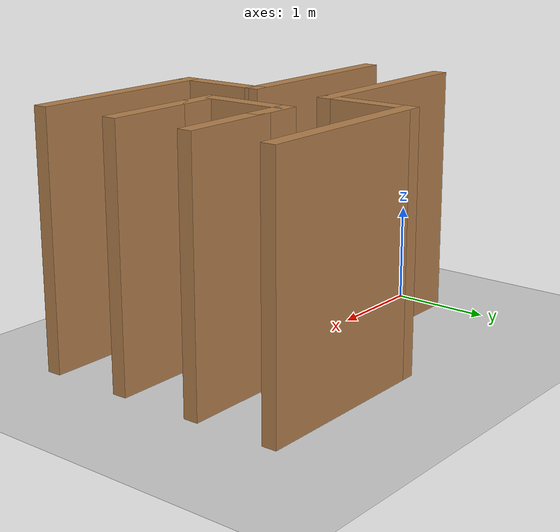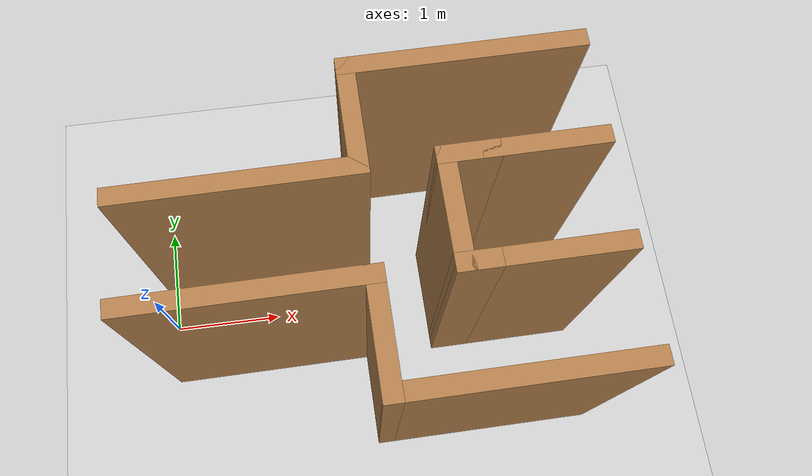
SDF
<sdf version="1.7">
 <world name="default">
  <light name="sun" type="directional">
   <pose>0 0 10 0 -0 0</pose>
   <diffuse>0.8 0.8 0.8 1</diffuse>
   <specular>0.2 0.2 0.2 1</specular>
   <attenuation>
    <range>1000</range>
    <constant>0.9</constant>
    <linear>0.01</linear>
    <quadratic>0.001</quadratic>
   </attenuation>
   <direction>-0.5 0.1 -0.9</direction>
   <spot><inner_angle>0</inner_angle><outer_angle>0</outer_angle><falloff>0</falloff></spot>
  </light>
  <model name="ground_plane">
   <static>1</static>
   <link name="link">
    <collision name="collision">
     <geometry><plane><normal>0 0 1</normal><size>100 100</size></plane></geometry>
     <surface>
      <contact><collide_bitmask>65535</collide_bitmask></contact>
      <friction><ode><mu>100</mu><mu2>50</mu2></ode></friction>
     </surface>
    </collision>
    <visual name="visual">
     <cast_shadows>0</cast_shadows>
     <geometry><plane><normal>0 0 1</normal><size>100 100</size></plane></geometry>
     <material>
      <script><uri>file://media/materials/scripts/gazebo.material</uri><name>Gazebo/Grey</name></script>
     </material>
    </visual>
   </link>
  </model>
  <gravity>0 0 -9.8</gravity>
  <magnetic_field>6e-06 2.3e-05 -4.2e-05</magnetic_field>
  <atmosphere type="adiabatic"/>
  <physics type="ode">
   <max_step_size>0.001</max_step_size>
   <real_time_factor>1</real_time_factor>
   <real_time_update_rate>1000</real_time_update_rate>
  </physics>
  <scene><ambient>0.4 0.4 0.4 1</ambient><background>0.7 0.7 0.7 1</background><shadows>1</shadows></scene>
  <spherical_coordinates>
   <surface_model>EARTH_WGS84</surface_model>
   <latitude_deg>0</latitude_deg>
   <longitude_deg>0</longitude_deg>
   <elevation>0</elevation>
   <heading_deg>0</heading_deg>
  </spherical_coordinates>
  <model name="Hall_1">
   <pose>1.97324 -0.02186 0 0 0 -1.56153</pose>
   <link name="Wall_0">
    <collision name="Wall_0_Collision">
     <geometry><box><size>2 0.15 2.5</size></box></geometry>
     <pose>0 0 1.25 0 -0 0</pose>
    </collision>
    <visual name="Wall_0_Visual">
     <pose>0 0 1.25 0 -0 0</pose>
     <geometry><box><size>2 0.15 2.5</size></box></geometry>
     <material>
      <script><uri>file://media/materials/scripts/gazebo.material</uri><name>Gazebo/Wood</name></script>
      <ambient>1 1 1 1</ambient>
     </material>
     <meta><layer>0</layer></meta>
    </visual>
    <pose>-0.425 -0.988573 0 0 -0 -1.5708</pose>
   </link>
   <link name="Wall_18">
    <collision name="Wall_18_Collision">
     <geometry><box><size>2 0.15 2.5</size></box></geometry>
     <pose>0 0 1.25 0 -0 0</pose>
    </collision>
    <visual name="Wall_18_Visual">
     <pose>0 0 1.25 0 -0 0</pose>
     <geometry><box><size>2 0.15 2.5</size></box></geometry>
     <material>
      <script><uri>file://media/materials/scripts/gazebo.material</uri><name>Gazebo/Wood</name></script>
      <ambient>1 1 1 1</ambient>
     </material>
     <meta><layer>0</layer></meta>
    </visual>
    <pose>-1.275 0.861427 0 0 -0 1.5708</pose>
   </link>
   <link name="Wall_2">
    <collision name="Wall_2_Collision">
     <geometry><box><size>1 0.15 2.5</size></box></geometry>
     <pose>0 0 1.25 0 -0 0</pose>
    </collision>
    <visual name="Wall_2_Visual">
     <pose>0 0 1.25 0 -0 0</pose>
     <geometry><box><size>1 0.15 2.5</size></box></geometry>
     <material>
      <script><uri>file://media/materials/scripts/gazebo.material</uri><name>Gazebo/Wood</name></script>
      <ambient>1 1 1 1</ambient>
     </material>
     <meta><layer>0</layer></meta>
    </visual>
    <pose>-0.85 -0.063573 0 0 -0 3.14159</pose>
   </link>
   <link name="Wall_20">
    <collision name="Wall_20_Collision">
     <geometry><box><size>1 0.15 2.5</size></box></geometry>
     <pose>0 0 1.25 0 -0 0</pose>
    </collision>
    <visual name="Wall_20_Visual">
     <pose>0 0 1.25 0 -0 0</pose>
     <geometry><box><size>1 0.15 2.5</size></box></geometry>
     <material>
      <script><uri>file://media/materials/scripts/gazebo.material</uri><name>Gazebo/Wood</name></script>
      <ambient>1 1 1 1</ambient>
     </material>
     <meta><layer>0</layer></meta>
    </visual>
    <pose>-0.425 1.36143 0 0 -0 -1.5708</pose>
   </link>
   <link name="Wall_22">
    <collision name="Wall_22_Collision">
     <geometry><box><size>1 0.15 2.5</size></box></geometry>
     <pose>0 0 1.25 0 -0 0</pose>
    </collision>
    <visual name="Wall_22_Visual">
     <pose>0 0 1.25 0 -0 0</pose>
     <geometry><box><size>1 0.15 2.5</size></box></geometry>
     <material>
      <script><uri>file://media/materials/scripts/gazebo.material</uri><name>Gazebo/Wood</name></script>
      <ambient>1 1 1 1</ambient>
     </material>
     <meta><layer>0</layer></meta>
    </visual>
    <pose>0.425 1.36143 0 0 -0 1.5708</pose>
   </link>
   <link name="Wall_24">
    <collision name="Wall_24_Collision">
     <geometry><box><size>2 0.15 2.5</size></box></geometry>
     <pose>0 0 1.25 0 -0 0</pose>
    </collision>
    <visual name="Wall_24_Visual">
     <pose>0 0 1.25 0 -0 0</pose>
     <geometry><box><size>2 0.15 2.5</size></box></geometry>
     <material>
      <script><uri>file://media/materials/scripts/gazebo.material</uri><name>Gazebo/Wood</name></script>
      <ambient>1 1 1 1</ambient>
     </material>
     <meta><layer>0</layer></meta>
    </visual>
    <pose>1.275 0.861427 0 0 -0 -1.5708</pose>
   </link>
   <link name="Wall_26">
    <collision name="Wall_26_Collision">
     <geometry><box><size>0.5 0.15 2.5</size></box></geometry>
     <pose>0 0 1.25 0 -0 0</pose>
    </collision>
    <visual name="Wall_26_Visual">
     <pose>0 0 1.25 0 -0 0</pose>
     <geometry><box><size>0.5 0.15 2.5</size></box></geometry>
     <material>
      <script><uri>file://media/materials/scripts/gazebo.material</uri><name>Gazebo/Wood</name></script>
      <ambient>1 1 1 1</ambient>
     </material>
     <meta><layer>0</layer></meta>
    </visual>
    <pose>-0.425 0.761427 0 0 -0 -1.5708</pose>
   </link>
   <link name="Wall_27">
    <collision name="Wall_27_Collision">
     <geometry><box><size>1 0.15 2.5</size></box></geometry>
     <pose>0 0 1.25 0 -0 0</pose>
    </collision>
    <visual name="Wall_27_Visual">
     <pose>0 0 1.25 0 -0 0</pose>
     <geometry><box><size>1 0.15 2.5</size></box></geometry>
     <material>
      <script><uri>file://media/materials/scripts/gazebo.material</uri><name>Gazebo/Wood</name></script>
      <ambient>1 1 1 1</ambient>
     </material>
     <meta><layer>0</layer></meta>
    </visual>
    <pose>0 0.586427 0 0 -0 0</pose>
   </link>
   <link name="Wall_28">
    <collision name="Wall_28_Collision">
     <geometry><box><size>0.5 0.15 2.5</size></box></geometry>
     <pose>0 0 1.25 0 -0 0</pose>
    </collision>
    <visual name="Wall_28_Visual">
     <pose>0 0 1.25 0 -0 0</pose>
     <geometry><box><size>0.5 0.15 2.5</size></box></geometry>
     <material>
      <script><uri>file://media/materials/scripts/gazebo.material</uri><name>Gazebo/Wood</name></script>
      <ambient>1 1 1 1</ambient>
     </material>
     <meta><layer>0</layer></meta>
    </visual>
    <pose>0.425 0.761427 0 0 -0 1.5708</pose>
   </link>
   <link name="Wall_6">
    <collision name="Wall_6_Collision">
     <geometry><box><size>2 0.15 2.5</size></box></geometry>
     <pose>0 0 1.25 0 -0 0</pose>
    </collision>
    <visual name="Wall_6_Visual">
     <pose>0 0 1.25 0 -0 0</pose>
     <geometry><box><size>2 0.15 2.5</size></box></geometry>
     <material>
      <script><uri>file://media/materials/scripts/gazebo.material</uri><name>Gazebo/Wood</name></script>
      <ambient>1 1 1 1</ambient>
     </material>
     <meta><layer>0</layer></meta>
    </visual>
    <pose>0.425 -0.988573 0 0 -0 1.5708</pose>
   </link>
   <link name="Wall_7">
    <collision name="Wall_7_Collision">
     <geometry><box><size>1 0.15 2.5</size></box></geometry>
     <pose>0 0 1.25 0 -0 0</pose>
    </collision>
    <visual name="Wall_7_Visual">
     <pose>0 0 1.25 0 -0 0</pose>
     <geometry><box><size>1 0.15 2.5</size></box></geometry>
     <material>
      <script><uri>file://media/materials/scripts/gazebo.material</uri><name>Gazebo/Wood</name></script>
      <ambient>1 1 1 1</ambient>
     </material>
     <meta><layer>0</layer></meta>
    </visual>
    <pose>0.85 -0.063573 0 0 -0 0</pose>
   </link>
   <static>1</static>
  </model>
 </world>
</sdf>
